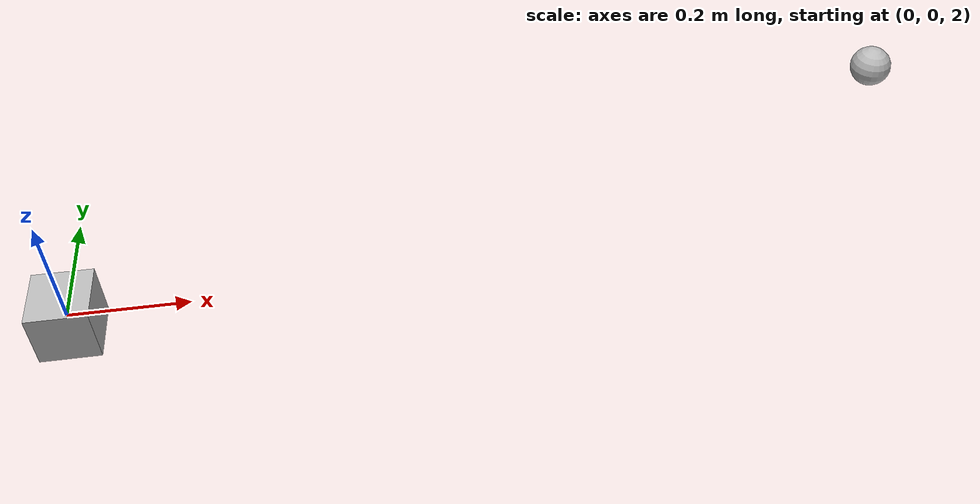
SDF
<?xml version="1.0"?>
<sdf version="1.6">
  <world name="default">
    <include>
      <uri>model://sun</uri>
    </include>

    <model name="submarine">
      <pose>0 0 2 0 0 0</pose>
      <link name="base_link">
        <volume>0.001</volume>
        <inertial>
          <mass>1</mass>
        </inertial>
        <visual name='body_visual'>
          <geometry>
            <box>
              <size>0.1 0.1 0.1</size>
            </box>
          </geometry>
        </visual>
        <collision name='body_collision'>
          <geometry>
              <box>
                <size>0.1 0.1 0.1</size>
              </box>
          </geometry>
        </collision>
      </link>
      <link name="front_camera_link">
        <pose>0 0 0 0 0 0</pose>
        <volume> 0.001 </volume>
        <inertial>
          <mass>1</mass>
        </inertial>
        <visual name='camera_visual'>
          <geometry>
            <box>
              <size>0.1 0.1 0.1</size>
            </box>
          </geometry>
        </visual>
        <collision name='camera_collision'>
          <geometry>
            <box>
              <size>0.1 0.1 0.1</size>
            </box>
          </geometry>
        </collision>
        <sensor type="camera" name="front">
          <update_rate>60</update_rate>
          <visualize>true</visualize>
          <camera name="head">
            <horizontal_fov>1.3962634</horizontal_fov>
            <image>
              <width>640</width>
              <height>480</height>
              <format>R8G8B8</format>
            </image>
            <clip>
              <near>0.02</near>
              <far>300</far>
            </clip>
            <noise>
              <type>gaussian</type>
              <mean>0.0</mean>
              <stddev>0.007</stddev>
            </noise>
          </camera>
          <plugin name="gazebo_camera_controller" filename="libgazebo_ros_camera.so">
            <ros>
              <namespace>/tr/gazebo_drivers/camera</namespace>
              <!-- TODO(louise) Remapping not working due to https://github.com/ros-perception/image_common/issues/93 -->
              <remapping>image_raw:=image_demo</remapping>
              <remapping>camera_info:=camera_info_demo</remapping>
            </ros>
          </plugin>
        </sensor>
      </link>
      <joint name="front_camera_joint" type="fixed">
          <parent>base_link</parent>
          <child>front_camera_link</child>
      </joint>
      <plugin name="buoyancy" filename="libBuoyancyPlugin.so">
        <fluid_density>1000</fluid_density>
      </plugin>
      <plugin name="gazebo_force_controller" filename="libgazebo_ros_force.so">
        <ros>
          <namespace>/tr/gazebo_drivers/thrusters</namespace>
          <remapping>gazebo_ros_force:=force</remapping>
        </ros>
        <link_name>base_link</link_name>
        <force_frame>world</force_frame>
      </plugin>
    </model>

    <model name="ball">
        <pose>1.4 0.2 2.2 0 0 0</pose>
        <link name="link">
        <volume>0.000168884995</volume>
        <inertial>
          <mass>0.168884995</mass>
        </inertial>
        <collision name="ball_collision">
          <geometry>
            <sphere>
              <radius>0.03429</radius>
            </sphere>
          </geometry>
        </collision>
        <visual name="ball_visual">
          <geometry>
            <sphere>
              <radius>0.03429</radius>
            </sphere>
          </geometry>
        </visual>
      </link>
      <plugin name="buoyancy" filename="libBuoyancyPlugin.so">
        <fluid_density>1000</fluid_density>
      </plugin>
    </model>

  </world>
</sdf>
